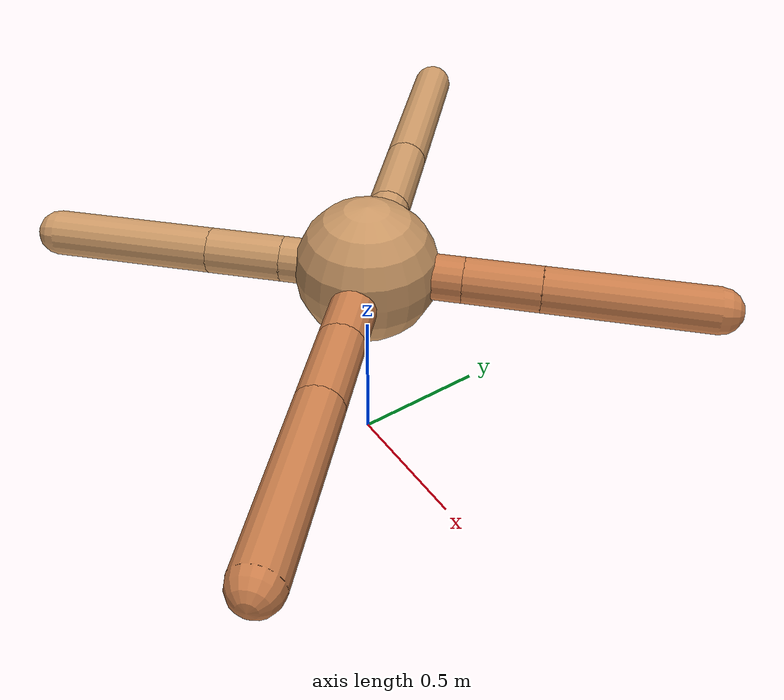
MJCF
<mujoco model="ant">
  <compiler angle="degree" coordinate="local" inertiafromgeom="true" />
  <option integrator="RK4" timestep="0.01" />
  <custom>
    <numeric data="0.0 0.0 0.55 1.0 0.0 0.0 0.0 0.0 1.0 0.0 -1.0 0.0 -1.0 0.0 1.0" name="init_qpos" />
  </custom>
  <default>
    <joint armature="1" damping="1" limited="true" />
    <geom conaffinity="0" condim="3" density="5.0" friction="1.5 0.1 0.1" margin="0.01" rgba="0.8 0.6 0.4 1" />
  </default>
  <worldbody>
    <body name="torso" pos="0 0 0.75">
      <geom name="torso_geom" pos="0 0 0" size="0.25" type="sphere" />

      <body name="front_left_leg" pos="0 0 0">
        <geom fromto="0.0 0.0 0.0 0.2351265359667347 0.2351265359667347 0.0" name="aux_1_geom" size="0.08" type="capsule" rgba=".8 .5 .3 1" />
        <body name="aux_1" pos="0.2351265359667347 0.2351265359667347 0.0">
          <joint axis="0 0 1" name="hip_1" pos="0.0 0.0 0.0" range="-40 40" type="hinge" />
          <geom fromto="0.0 0.0 0.0 0.18644533202837588 0.18644533202837588 0.0" name="left_leg_geom" size="0.08" type="capsule" rgba=".8 .5 .3 1" />
          <body pos="0.18644533202837588 0.18644533202837588 0.0" name="front_left_foot">
            <joint axis="-1 1 0" name="ankle_1" pos="0.0 0.0 0.0" range="30 100" type="hinge" />
            <geom fromto="0.0 0.0 0.0 0.4034174776781768 0.4034174776781768 0.0" name="left_ankle_geom" size="0.08" type="capsule" rgba=".8 .5 .3 1" />
          </body>
        </body>
      </body>
      <body name="front_right_leg" pos="0 0 0">
        <geom fromto="0.0 0.0 0.0 -0.27371601101386356 0.27371601101386356 0.0" name="aux_2_geom" size="0.08" type="capsule" />
        <body name="aux_2" pos="-0.27371601101386356 0.27371601101386356 0.0">
          <joint axis="0 0 1" name="hip_2" pos="0.0 0.0 0.0" range="-40 40" type="hinge" />
          <geom fromto="0.0 0.0 0.0 -0.26701575623750967 0.26701575623750967 0.0" name="right_leg_geom" size="0.08" type="capsule" />
          <body pos="-0.26701575623750967 0.26701575623750967 0.0" name="front_right_foot">
            <joint axis="1 1 0" name="ankle_2" pos="0.0 0.0 0.0" range="-100 -30" type="hinge" />
            <geom fromto="0.0 0.0 0.0 -0.5147365641451657 0.5147365641451657 0.0" name="right_ankle_geom" size="0.08" type="capsule" />
          </body>
        </body>
      </body>
      <body name="left_back_leg" pos="0 0 0">
        <geom fromto="0.0 0.0 0.0 -0.21023553654793004 -0.21023553654793004 0.0" name="aux_3_geom" size="0.08" type="capsule" />
        <body name="aux_3" pos="-0.21023553654793004 -0.21023553654793004 0.0">
          <joint axis="0 0 1" name="hip_3" pos="0.0 0.0 0.0" range="-40 40" type="hinge" />
          <geom fromto="0.0 0.0 0.0 -0.18599862915588938 -0.18599862915588938 0.0" name="back_leg_geom" size="0.08" type="capsule" />
          <body pos="-0.18599862915588938 -0.18599862915588938 0.0" name="left_back_foot">
            <joint axis="-1 1 0" name="ankle_3" pos="0.0 0.0 0.0" range="-100 -30" type="hinge" />
            <geom fromto="0.0 0.0 0.0 -0.4015892893109908 -0.4015892893109908 0.0" name="third_ankle_geom" size="0.08" type="capsule" />
          </body>
        </body>
      </body>
      <body name="right_back_leg" pos="0 0 0">
        <geom fromto="0.0 0.0 0.0 0.28353714287126935 -0.28353714287126935 0.0" name="aux_4_geom" size="0.08" type="capsule" rgba=".8 .5 .3 1" />
        <body name="aux_4" pos="0.28353714287126935 -0.28353714287126935 0.0">
          <joint axis="0 0 1" name="hip_4" pos="0.0 0.0 0.0" range="-40 40" type="hinge" />
          <geom fromto="0.0 0.0 0.0 0.19890830579513535 -0.19890830579513535 0.0" name="rightback_leg_geom" size="0.08" type="capsule" rgba=".8 .5 .3 1" />
          <body pos="0.19890830579513535 -0.19890830579513535 0.0" name="right_back_foot">
            <joint axis="1 1 0" name="ankle_4" pos="0.0 0.0 0.0" range="30 100" type="hinge" />
            <geom fromto="0.0 0.0 0.0 0.4378539041010891 -0.4378539041010891 0.0" name="fourth_ankle_geom" size="0.08" type="capsule" rgba=".8 .5 .3 1" />
          </body>
        </body>
      </body>
    </body>
  </worldbody>
  <actuator>
    <motor ctrllimited="true" ctrlrange="-1.0 1.0" joint="hip_4" gear="150" />
    <motor ctrllimited="true" ctrlrange="-1.0 1.0" joint="ankle_4" gear="150" />
    <motor ctrllimited="true" ctrlrange="-1.0 1.0" joint="hip_1" gear="150" />
    <motor ctrllimited="true" ctrlrange="-1.0 1.0" joint="ankle_1" gear="150" />
    <motor ctrllimited="true" ctrlrange="-1.0 1.0" joint="hip_2" gear="150" />
    <motor ctrllimited="true" ctrlrange="-1.0 1.0" joint="ankle_2" gear="150" />
    <motor ctrllimited="true" ctrlrange="-1.0 1.0" joint="hip_3" gear="150" />
    <motor ctrllimited="true" ctrlrange="-1.0 1.0" joint="ankle_3" gear="150" />
  </actuator>
</mujoco>
